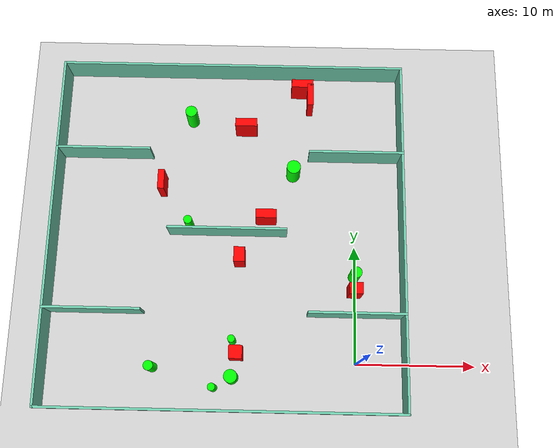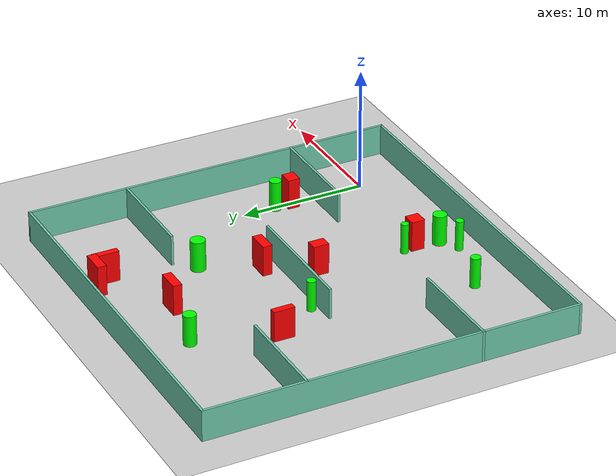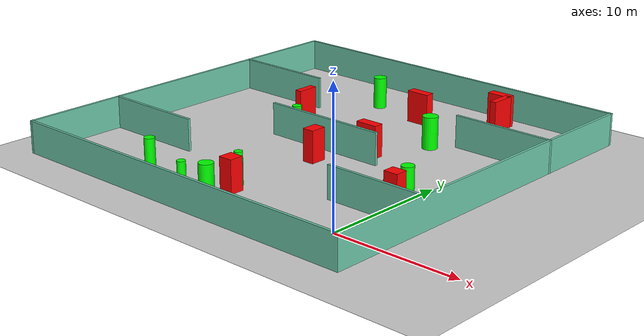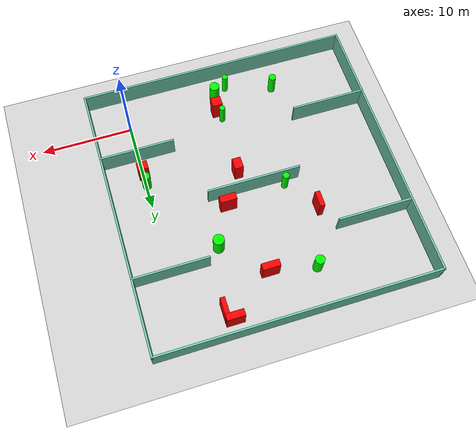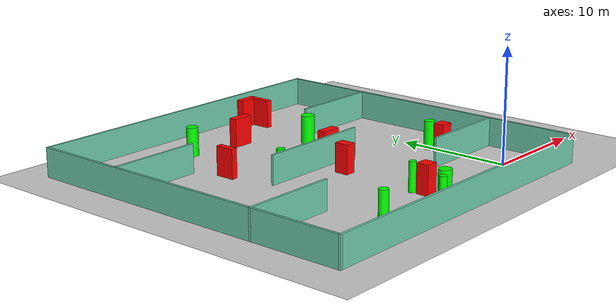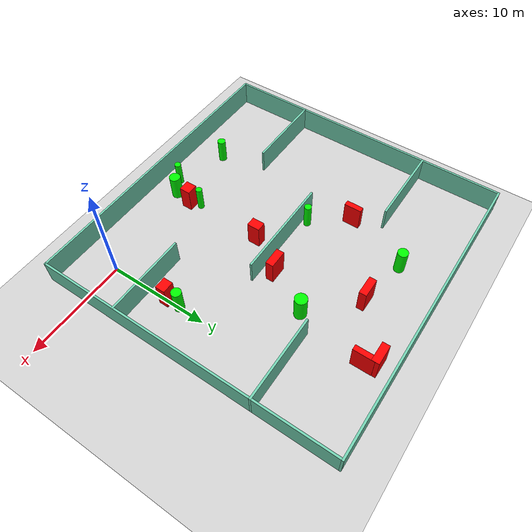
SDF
<sdf version="1.7">
 <world name="default">
  <light name="sun" type="directional">
   <pose>0 0 10 0 -0 0</pose>
   <diffuse>0.8 0.8 0.8 1</diffuse>
   <specular>0.2 0.2 0.2 1</specular>
   <attenuation>
    <range>1000</range>
    <constant>0.9</constant>
    <linear>0.01</linear>
    <quadratic>0.001</quadratic>
   </attenuation>
   <direction>-0.5 0.1 -0.9</direction>
   <spot><inner_angle>0</inner_angle><outer_angle>0</outer_angle><falloff>0</falloff></spot>
  </light>
  <model name="ground_plane">
   <static>1</static>
   <link name="link">
    <collision name="collision">
     <geometry><plane><normal>0 0 1</normal><size>100 100</size></plane></geometry>
     <surface>
      <contact><collide_bitmask>65535</collide_bitmask></contact>
      <friction><ode><mu>100</mu><mu2>50</mu2></ode></friction>
     </surface>
    </collision>
    <visual name="visual">
     <cast_shadows>0</cast_shadows>
     <geometry><plane><normal>0 0 1</normal><size>100 100</size></plane></geometry>
     <material>
      <script><uri>file://media/materials/scripts/gazebo.material</uri><name>Gazebo/Grey</name></script>
     </material>
    </visual>
   </link>
  </model>
  <gravity>0 0 -9.8</gravity>
  <magnetic_field>6e-06 2.3e-05 -4.2e-05</magnetic_field>
  <atmosphere type="adiabatic"/>
  <physics type="ode">
   <max_step_size>0.001</max_step_size>
   <real_time_factor>1</real_time_factor>
   <real_time_update_rate>1000</real_time_update_rate>
  </physics>
  <scene><ambient>0.4 0.4 0.4 1</ambient><background>0.7 0.7 0.7 1</background><shadows>1</shadows></scene>
  <spherical_coordinates>
   <surface_model>EARTH_WGS84</surface_model>
   <latitude_deg>0</latitude_deg>
   <longitude_deg>0</longitude_deg>
   <elevation>0</elevation>
   <heading_deg>0</heading_deg>
  </spherical_coordinates>
  <model name="my_base_walls">
   <link name="Wall_10">
    <collision name="Wall_10_Collision">
     <geometry><box><size>8.2 0.2 2.5</size></box></geometry>
     <pose>0 0 1.25 0 -0 0</pose>
    </collision>
    <visual name="Wall_10_Visual">
     <pose>0 0 1.25 0 -0 0</pose>
     <geometry><box><size>8.2 0.2 2.5</size></box></geometry>
     <material>
      <script><uri>file://media/materials/scripts/gazebo.material</uri><name>Gazebo/Grey</name></script>
      <ambient>0.435294 0.796078 0.67451 1</ambient>
     </material>
     <meta><layer>0</layer></meta>
    </visual>
    <pose>-11 -7 0 0 -0 0</pose>
   </link>
   <link name="Wall_12">
    <collision name="Wall_12_Collision">
     <geometry><box><size>8.2 0.2 2.5</size></box></geometry>
     <pose>0 0 1.25 0 -0 0</pose>
    </collision>
    <visual name="Wall_12_Visual">
     <pose>0 0 1.25 0 -0 0</pose>
     <geometry><box><size>8.2 0.2 2.5</size></box></geometry>
     <material>
      <script><uri>file://media/materials/scripts/gazebo.material</uri><name>Gazebo/Grey</name></script>
      <ambient>0.435294 0.796078 0.67451 1</ambient>
     </material>
     <meta><layer>0</layer></meta>
    </visual>
    <pose>-11 7 0 0 -0 0</pose>
   </link>
   <link name="Wall_14">
    <collision name="Wall_14_Collision">
     <geometry><box><size>8.2 0.2 2.5</size></box></geometry>
     <pose>0 0 1.25 0 -0 0</pose>
    </collision>
    <visual name="Wall_14_Visual">
     <pose>0 0 1.25 0 -0 0</pose>
     <geometry><box><size>8.2 0.2 2.5</size></box></geometry>
     <material>
      <script><uri>file://media/materials/scripts/gazebo.material</uri><name>Gazebo/Grey</name></script>
      <ambient>0.435294 0.796078 0.67451 1</ambient>
     </material>
     <meta><layer>0</layer></meta>
    </visual>
    <pose>11 7 0 0 -0 3.14159</pose>
   </link>
   <link name="Wall_16">
    <collision name="Wall_16_Collision">
     <geometry><box><size>10.2 0.2 2.5</size></box></geometry>
     <pose>0 0 1.25 0 -0 0</pose>
    </collision>
    <visual name="Wall_16_Visual">
     <pose>0 0 1.25 0 -0 0</pose>
     <geometry><box><size>10.2 0.2 2.5</size></box></geometry>
     <material>
      <script><uri>file://media/materials/scripts/gazebo.material</uri><name>Gazebo/Grey</name></script>
      <ambient>0.435294 0.796078 0.67451 1</ambient>
     </material>
     <meta><layer>0</layer></meta>
    </visual>
    <pose>0 0 0 0 -0 3.14159</pose>
   </link>
   <link name="Wall_2">
    <collision name="Wall_2_Collision">
     <geometry><box><size>30.2 0.2 2.5</size></box></geometry>
     <pose>0 0 1.25 0 -0 0</pose>
    </collision>
    <visual name="Wall_2_Visual">
     <pose>0 0 1.25 0 -0 0</pose>
     <geometry><box><size>30.2 0.2 2.5</size></box></geometry>
     <material>
      <script><uri>file://media/materials/scripts/gazebo.material</uri><name>Gazebo/Grey</name></script>
      <ambient>0.435294 0.796078 0.67451 1</ambient>
     </material>
     <meta><layer>0</layer></meta>
    </visual>
    <pose>0 -15 0 0 -0 3.14159</pose>
   </link>
   <link name="Wall_3">
    <collision name="Wall_3_Collision">
     <geometry><box><size>30.2 0.2 2.5</size></box></geometry>
     <pose>0 0 1.25 0 -0 0</pose>
    </collision>
    <visual name="Wall_3_Visual">
     <pose>0 0 1.25 0 -0 0</pose>
     <geometry><box><size>30.2 0.2 2.5</size></box></geometry>
     <material>
      <script><uri>file://media/materials/scripts/gazebo.material</uri><name>Gazebo/Grey</name></script>
      <ambient>0.435294 0.796078 0.67451 1</ambient>
     </material>
     <meta><layer>0</layer></meta>
    </visual>
    <pose>-15 0 0 0 -0 1.5708</pose>
   </link>
   <link name="Wall_4">
    <collision name="Wall_4_Collision">
     <geometry><box><size>30.2 0.2 2.5</size></box></geometry>
     <pose>0 0 1.25 0 -0 0</pose>
    </collision>
    <visual name="Wall_4_Visual">
     <pose>0 0 1.25 0 -0 0</pose>
     <geometry><box><size>30.2 0.2 2.5</size></box></geometry>
     <material>
      <script><uri>file://media/materials/scripts/gazebo.material</uri><name>Gazebo/Grey</name></script>
      <ambient>0.435294 0.796078 0.67451 1</ambient>
     </material>
     <meta><layer>0</layer></meta>
    </visual>
    <pose>0 15 0 0 -0 0</pose>
   </link>
   <link name="Wall_6">
    <collision name="Wall_6_Collision">
     <geometry><box><size>30.2 0.2 2.5</size></box></geometry>
     <pose>0 0 1.25 0 -0 0</pose>
    </collision>
    <visual name="Wall_6_Visual">
     <pose>0 0 1.25 0 -0 0</pose>
     <geometry><box><size>30.2 0.2 2.5</size></box></geometry>
     <material>
      <script><uri>file://media/materials/scripts/gazebo.material</uri><name>Gazebo/Grey</name></script>
      <ambient>0.435294 0.796078 0.67451 1</ambient>
     </material>
     <meta><layer>0</layer></meta>
    </visual>
    <pose>15 0 0 0 -0 1.5708</pose>
   </link>
   <link name="Wall_8">
    <collision name="Wall_8_Collision">
     <geometry><box><size>8.2 0.2 2.5</size></box></geometry>
     <pose>0 0 1.25 0 -0 0</pose>
    </collision>
    <visual name="Wall_8_Visual">
     <pose>0 0 1.25 0 -0 0</pose>
     <geometry><box><size>8.2 0.2 2.5</size></box></geometry>
     <material>
      <script><uri>file://media/materials/scripts/gazebo.material</uri><name>Gazebo/Grey</name></script>
      <ambient>0.435294 0.796078 0.67451 1</ambient>
     </material>
     <meta><layer>0</layer></meta>
    </visual>
    <pose>11 -7 0 0 -0 3.14159</pose>
   </link>
   <static>1</static>
   <pose>-11 11 0 0 -0 0</pose>
  </model>
  <model name="cylinder1">
   <static>1</static>
   <link name="link">
    <inertial>
     <mass>1</mass>
     <inertia><ixx>0.5</ixx><ixy>0</ixy><ixz>0</ixz><iyy>0.5</iyy><iyz>0</iyz><izz>1</izz></inertia>
    </inertial>
    <collision name="collision">
     <geometry><cylinder><radius>0.5067967789238688</radius><length>2.5</length></cylinder></geometry>
    </collision>
    <visual name="visual">
     <geometry><cylinder><radius>0.5067967789238688</radius><length>2.5</length></cylinder></geometry>
     <material>
      <ambient>0 1 0 1</ambient>
      <diffuse>0 1 0 1</diffuse>
      <specular>0.1 0.1 0.1 1</specular>
      <emissive>0 0 0 0</emissive>
     </material>
    </visual>
   </link>
   <pose>-14.507687715409578 21.50753440843467 1.25 0 0 0</pose>
  </model>
  <model name="cylinder2">
   <static>1</static>
   <link name="link">
    <inertial>
     <mass>1</mass>
     <inertia><ixx>0.5</ixx><ixy>0</ixy><ixz>0</ixz><iyy>0.5</iyy><iyz>0</iyz><izz>1</izz></inertia>
    </inertial>
    <collision name="collision">
     <geometry><cylinder><radius>0.5920351693206685</radius><length>2.5</length></cylinder></geometry>
    </collision>
    <visual name="visual">
     <geometry><cylinder><radius>0.5920351693206685</radius><length>2.5</length></cylinder></geometry>
     <material>
      <ambient>0 1 0 1</ambient>
      <diffuse>0 1 0 1</diffuse>
      <specular>0.1 0.1 0.1 1</specular>
      <emissive>0 0 0 0</emissive>
     </material>
    </visual>
   </link>
   <pose>-5.422460556511751 16.52556784788462 1.25 0 0 0</pose>
  </model>
  <model name="cylinder3">
   <static>1</static>
   <link name="link">
    <inertial>
     <mass>1</mass>
     <inertia><ixx>0.5</ixx><ixy>0</ixy><ixz>0</ixz><iyy>0.5</iyy><iyz>0</iyz><izz>1</izz></inertia>
    </inertial>
    <collision name="collision">
     <geometry><cylinder><radius>0.31616239230828797</radius><length>2.5</length></cylinder></geometry>
    </collision>
    <visual name="visual">
     <geometry><cylinder><radius>0.31616239230828797</radius><length>2.5</length></cylinder></geometry>
     <material>
      <ambient>0 1 0 1</ambient>
      <diffuse>0 1 0 1</diffuse>
      <specular>0.1 0.1 0.1 1</specular>
      <emissive>0 0 0 0</emissive>
     </material>
    </visual>
   </link>
   <pose>-11.791374651039586 -2.166429925862956 1.25 0 0 0</pose>
  </model>
  <model name="cylinder4">
   <static>1</static>
   <link name="link">
    <inertial>
     <mass>1</mass>
     <inertia><ixx>0.5</ixx><ixy>0</ixy><ixz>0</ixz><iyy>0.5</iyy><iyz>0</iyz><izz>1</izz></inertia>
    </inertial>
    <collision name="collision">
     <geometry><cylinder><radius>0.475459474933727</radius><length>2.5</length></cylinder></geometry>
    </collision>
    <visual name="visual">
     <geometry><cylinder><radius>0.475459474933727</radius><length>2.5</length></cylinder></geometry>
     <material>
      <ambient>0 1 0 1</ambient>
      <diffuse>0 1 0 1</diffuse>
      <specular>0.1 0.1 0.1 1</specular>
      <emissive>0 0 0 0</emissive>
     </material>
    </visual>
   </link>
   <pose>-0.08458546133998368 7.399564200918984 1.25 0 0 0</pose>
  </model>
  <model name="cylinder5">
   <static>1</static>
   <link name="link">
    <inertial>
     <mass>1</mass>
     <inertia><ixx>0.5</ixx><ixy>0</ixy><ixz>0</ixz><iyy>0.5</iyy><iyz>0</iyz><izz>1</izz></inertia>
    </inertial>
    <collision name="collision">
     <geometry><cylinder><radius>0.5488382246256541</radius><length>2.5</length></cylinder></geometry>
    </collision>
    <visual name="visual">
     <geometry><cylinder><radius>0.5488382246256541</radius><length>2.5</length></cylinder></geometry>
     <material>
      <ambient>0 1 0 1</ambient>
      <diffuse>0 1 0 1</diffuse>
      <specular>0.1 0.1 0.1 1</specular>
      <emissive>0 0 0 0</emissive>
     </material>
    </visual>
   </link>
   <pose>-10.297962557358442 -1.300682453248006 1.25 0 0 0</pose>
  </model>
  <model name="cylinder6">
   <static>1</static>
   <link name="link">
    <inertial>
     <mass>1</mass>
     <inertia><ixx>0.5</ixx><ixy>0</ixy><ixz>0</ixz><iyy>0.5</iyy><iyz>0</iyz><izz>1</izz></inertia>
    </inertial>
    <collision name="collision">
     <geometry><cylinder><radius>0.3987009992463957</radius><length>2.5</length></cylinder></geometry>
    </collision>
    <visual name="visual">
     <geometry><cylinder><radius>0.3987009992463957</radius><length>2.5</length></cylinder></geometry>
     <material>
      <ambient>0 1 0 1</ambient>
      <diffuse>0 1 0 1</diffuse>
      <specular>0.1 0.1 0.1 1</specular>
      <emissive>0 0 0 0</emissive>
     </material>
    </visual>
   </link>
   <pose>-16.946326027516815 -0.576199073187615 1.25 0 0 0</pose>
  </model>
  <model name="cylinder7">
   <static>1</static>
   <link name="link">
    <inertial>
     <mass>1</mass>
     <inertia><ixx>0.5</ixx><ixy>0</ixy><ixz>0</ixz><iyy>0.5</iyy><iyz>0</iyz><izz>1</izz></inertia>
    </inertial>
    <collision name="collision">
     <geometry><cylinder><radius>0.35562147615865247</radius><length>2.5</length></cylinder></geometry>
    </collision>
    <visual name="visual">
     <geometry><cylinder><radius>0.35562147615865247</radius><length>2.5</length></cylinder></geometry>
     <material>
      <ambient>0 1 0 1</ambient>
      <diffuse>0 1 0 1</diffuse>
      <specular>0.1 0.1 0.1 1</specular>
      <emissive>0 0 0 0</emissive>
     </material>
    </visual>
   </link>
   <pose>-14.348573948542125 11.655507051082283 1.25 0 0 0</pose>
  </model>
  <model name="cylinder8">
   <static>1</static>
   <link name="link">
    <inertial>
     <mass>1</mass>
     <inertia><ixx>0.5</ixx><ixy>0</ixy><ixz>0</ixz><iyy>0.5</iyy><iyz>0</iyz><izz>1</izz></inertia>
    </inertial>
    <collision name="collision">
     <geometry><cylinder><radius>0.3060932637873885</radius><length>2.5</length></cylinder></geometry>
    </collision>
    <visual name="visual">
     <geometry><cylinder><radius>0.3060932637873885</radius><length>2.5</length></cylinder></geometry>
     <material>
      <ambient>0 1 0 1</ambient>
      <diffuse>0 1 0 1</diffuse>
      <specular>0.1 0.1 0.1 1</specular>
      <emissive>0 0 0 0</emissive>
     </material>
    </visual>
   </link>
   <pose>-10.320164223075235 1.7058604662519725 1.25 0 0 0</pose>
  </model>
  <model name="box1">
   <static>1</static>
   <link name="link">
    <inertial>
     <mass>1</mass>
     <inertia><ixx>0.083</ixx><ixy>0</ixy><ixz>0</ixz><iyy>0.083</iyy><iyz>0</iyz><izz>0.083</izz></inertia>
    </inertial>
    <collision name="collision">
     <geometry><box><size>1.9096397762122859 0.7197524413687292 2.5</size></box></geometry>
    </collision>
    <visual name="visual">
     <geometry><box><size>1.9096397762122859 0.7197524413687292 2.5</size></box></geometry>
     <material>
      <ambient>1 0 0 1</ambient>
      <diffuse>1 0 0 1</diffuse>
      <specular>0.1 0.1 0.1 1</specular>
      <emissive>0 0 0 0</emissive>
     </material>
    </visual>
    <sensor name="my_contact" type="contact">
     <contact><collision>box_collision</collision><topic>__default_topic__</topic></contact>
    </sensor>
   </link>
   <pose>-4.742451103687326 24.394699602395768 1.25 0 0 0</pose>
  </model>
  <model name="box2">
   <static>1</static>
   <link name="link">
    <inertial>
     <mass>1</mass>
     <inertia><ixx>0.083</ixx><ixy>0</ixy><ixz>0</ixz><iyy>0.083</iyy><iyz>0</iyz><izz>0.083</izz></inertia>
    </inertial>
    <collision name="collision">
     <geometry><box><size>1.1485558615356113 0.9583845127404724 2.5</size></box></geometry>
    </collision>
    <visual name="visual">
     <geometry><box><size>1.1485558615356113 0.9583845127404724 2.5</size></box></geometry>
     <material>
      <ambient>1 0 0 1</ambient>
      <diffuse>1 0 0 1</diffuse>
      <specular>0.1 0.1 0.1 1</specular>
      <emissive>0 0 0 0</emissive>
     </material>
    </visual>
    <sensor name="my_contact" type="contact">
     <contact><collision>box_collision</collision><topic>__default_topic__</topic></contact>
    </sensor>
   </link>
   <pose>-0.08257979467068566 6.075186242337049 1.25 0 0 0</pose>
  </model>
  <model name="box3">
   <static>1</static>
   <link name="link">
    <inertial>
     <mass>1</mass>
     <inertia><ixx>0.083</ixx><ixy>0</ixy><ixz>0</ixz><iyy>0.083</iyy><iyz>0</iyz><izz>0.083</izz></inertia>
    </inertial>
    <collision name="collision">
     <geometry><box><size>0.9338984225905267 1.2493373115308368 2.5</size></box></geometry>
    </collision>
    <visual name="visual">
     <geometry><box><size>0.9338984225905267 1.2493373115308368 2.5</size></box></geometry>
     <material>
      <ambient>1 0 0 1</ambient>
      <diffuse>1 0 0 1</diffuse>
      <specular>0.1 0.1 0.1 1</specular>
      <emissive>0 0 0 0</emissive>
     </material>
    </visual>
    <sensor name="my_contact" type="contact">
     <contact><collision>box_collision</collision><topic>__default_topic__</topic></contact>
    </sensor>
   </link>
   <pose>-9.89507257904874 8.756238339736344 1.25 0 0 0</pose>
  </model>
  <model name="box4">
   <static>1</static>
   <link name="link">
    <inertial>
     <mass>1</mass>
     <inertia><ixx>0.083</ixx><ixy>0</ixy><ixz>0</ixz><iyy>0.083</iyy><iyz>0</iyz><izz>0.083</izz></inertia>
    </inertial>
    <collision name="collision">
     <geometry><box><size>0.5106074473285804 2.012905504962366 2.5</size></box></geometry>
    </collision>
    <visual name="visual">
     <geometry><box><size>0.5106074473285804 2.012905504962366 2.5</size></box></geometry>
     <material>
      <ambient>1 0 0 1</ambient>
      <diffuse>1 0 0 1</diffuse>
      <specular>0.1 0.1 0.1 1</specular>
      <emissive>0 0 0 0</emissive>
     </material>
    </visual>
    <sensor name="my_contact" type="contact">
     <contact><collision>box_collision</collision><topic>__default_topic__</topic></contact>
    </sensor>
   </link>
   <pose>-4.019948864911122 23.373863866173814 1.25 0 0 0</pose>
  </model>
  <model name="box5">
   <static>1</static>
   <link name="link">
    <inertial>
     <mass>1</mass>
     <inertia><ixx>0.083</ixx><ixy>0</ixy><ixz>0</ixz><iyy>0.083</iyy><iyz>0</iyz><izz>0.083</izz></inertia>
    </inertial>
    <collision name="collision">
     <geometry><box><size>0.5457263346553166 1.6957233881316196 2.5</size></box></geometry>
    </collision>
    <visual name="visual">
     <geometry><box><size>0.5457263346553166 1.6957233881316196 2.5</size></box></geometry>
     <material>
      <ambient>1 0 0 1</ambient>
      <diffuse>1 0 0 1</diffuse>
      <specular>0.1 0.1 0.1 1</specular>
      <emissive>0 0 0 0</emissive>
     </material>
    </visual>
    <sensor name="my_contact" type="contact">
     <contact><collision>box_collision</collision><topic>__default_topic__</topic></contact>
    </sensor>
   </link>
   <pose>-16.824188024444112 15.223421455624436 1.25 0 0 0</pose>
  </model>
  <model name="box6">
   <static>1</static>
   <link name="link">
    <inertial>
     <mass>1</mass>
     <inertia><ixx>0.083</ixx><ixy>0</ixy><ixz>0</ixz><iyy>0.083</iyy><iyz>0</iyz><izz>0.083</izz></inertia>
    </inertial>
    <collision name="collision">
     <geometry><box><size>1.1121579693244446 1.0894644753471683 2.5</size></box></geometry>
    </collision>
    <visual name="visual">
     <geometry><box><size>1.1121579693244446 1.0894644753471683 2.5</size></box></geometry>
     <material>
      <ambient>1 0 0 1</ambient>
      <diffuse>1 0 0 1</diffuse>
      <specular>0.1 0.1 0.1 1</specular>
      <emissive>0 0 0 0</emissive>
     </material>
    </visual>
    <sensor name="my_contact" type="contact">
     <contact><collision>box_collision</collision><topic>__default_topic__</topic></contact>
    </sensor>
   </link>
   <pose>-9.957623158005285 0.6550489336695215 1.25 0 0 0</pose>
  </model>
  <model name="box7">
   <static>1</static>
   <link name="link">
    <inertial>
     <mass>1</mass>
     <inertia><ixx>0.083</ixx><ixy>0</ixy><ixz>0</ixz><iyy>0.083</iyy><iyz>0</iyz><izz>0.083</izz></inertia>
    </inertial>
    <collision name="collision">
     <geometry><box><size>1.8925511626840137 0.7182598298123518 2.5</size></box></geometry>
    </collision>
    <visual name="visual">
     <geometry><box><size>1.8925511626840137 0.7182598298123518 2.5</size></box></geometry>
     <material>
      <ambient>1 0 0 1</ambient>
      <diffuse>1 0 0 1</diffuse>
      <specular>0.1 0.1 0.1 1</specular>
      <emissive>0 0 0 0</emissive>
     </material>
    </visual>
    <sensor name="my_contact" type="contact">
     <contact><collision>box_collision</collision><topic>__default_topic__</topic></contact>
    </sensor>
   </link>
   <pose>-9.645070395731796 20.596133432619038 1.25 0 0 0</pose>
  </model>
  <model name="box8">
   <static>1</static>
   <link name="link">
    <inertial>
     <mass>1</mass>
     <inertia><ixx>0.083</ixx><ixy>0</ixy><ixz>0</ixz><iyy>0.083</iyy><iyz>0</iyz><izz>0.083</izz></inertia>
    </inertial>
    <collision name="collision">
     <geometry><box><size>1.7894467595469399 0.7657052673429458 2.5</size></box></geometry>
    </collision>
    <visual name="visual">
     <geometry><box><size>1.7894467595469399 0.7657052673429458 2.5</size></box></geometry>
     <material>
      <ambient>1 0 0 1</ambient>
      <diffuse>1 0 0 1</diffuse>
      <specular>0.1 0.1 0.1 1</specular>
      <emissive>0 0 0 0</emissive>
     </material>
    </visual>
    <sensor name="my_contact" type="contact">
     <contact><collision>box_collision</collision><topic>__default_topic__</topic></contact>
    </sensor>
   </link>
   <pose>-7.718451196163009 12.329733624432604 1.25 0 0 0</pose>
  </model>
 </world>
</sdf>
